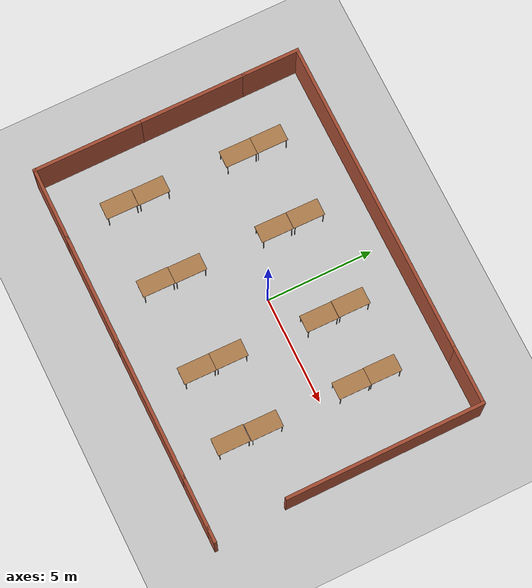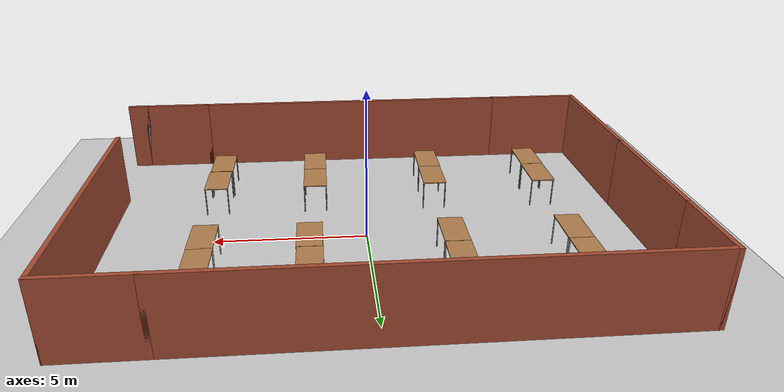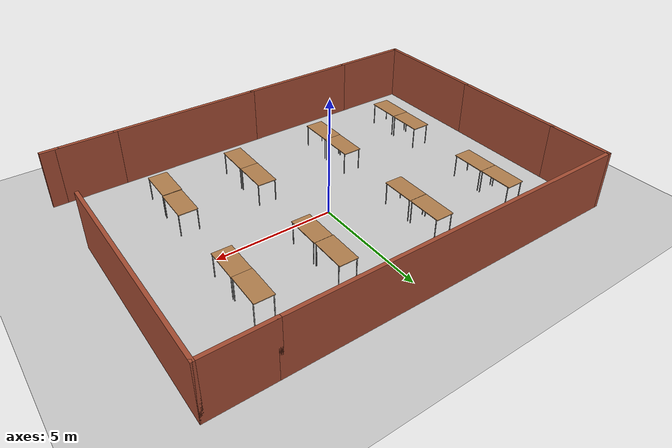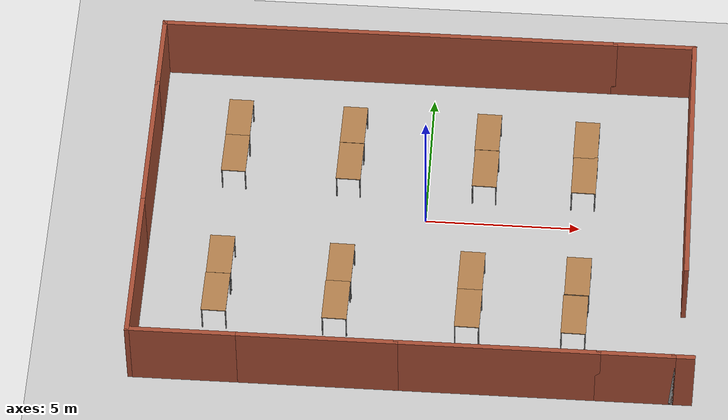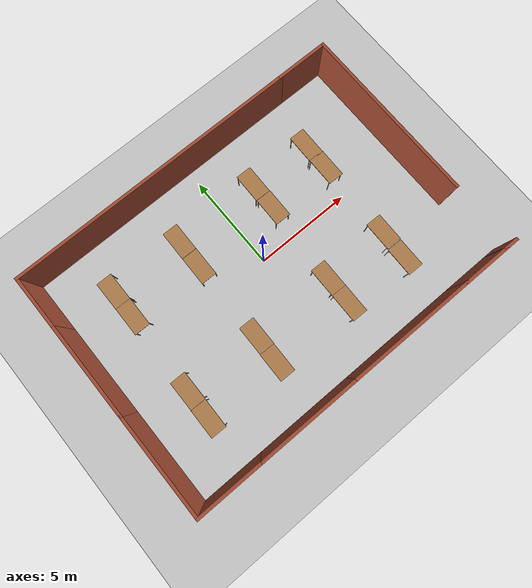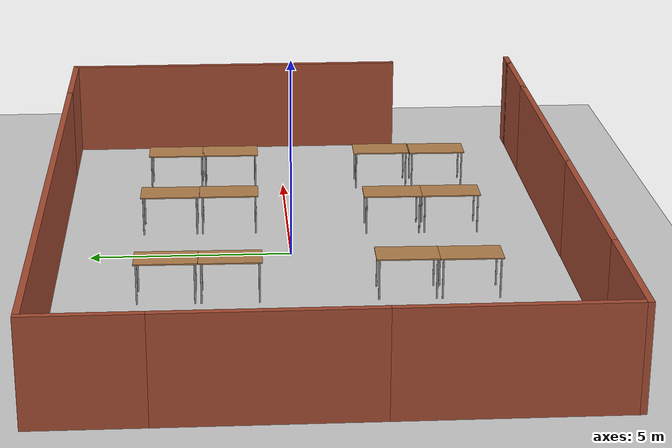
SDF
<sdf version="1.7">
 <world name="default">
  <light name="sun" type="directional">
   <pose>0 0 10 0 -0 0</pose>
   <diffuse>0.8 0.8 0.8 1</diffuse>
   <specular>0.2 0.2 0.2 1</specular>
   <attenuation>
    <range>1000</range>
    <constant>0.9</constant>
    <linear>0.01</linear>
    <quadratic>0.001</quadratic>
   </attenuation>
   <direction>-0.5 0.1 -0.9</direction>
   <spot><inner_angle>0</inner_angle><outer_angle>0</outer_angle><falloff>0</falloff></spot>
  </light>
  <model name="ground_plane">
   <static>1</static>
   <link name="link">
    <collision name="collision">
     <geometry><plane><normal>0 0 1</normal><size>100 100</size></plane></geometry>
     <surface>
      <contact><collide_bitmask>65535</collide_bitmask></contact>
      <friction><ode><mu>100</mu><mu2>50</mu2></ode></friction>
     </surface>
    </collision>
    <visual name="visual">
     <cast_shadows>0</cast_shadows>
     <geometry><plane><normal>0 0 1</normal><size>100 100</size></plane></geometry>
     <material>
      <script><uri>file://media/materials/scripts/gazebo.material</uri><name>Gazebo/Grey</name></script>
     </material>
    </visual>
   </link>
  </model>
  <gravity>0 0 -9.8</gravity>
  <magnetic_field>6e-06 2.3e-05 -4.2e-05</magnetic_field>
  <atmosphere type="adiabatic"/>
  <physics type="ode">
   <max_step_size>0.001</max_step_size>
   <real_time_factor>1</real_time_factor>
   <real_time_update_rate>1000</real_time_update_rate>
  </physics>
  <scene><ambient>0.4 0.4 0.4 1</ambient><background>0.7 0.7 0.7 1</background><shadows>1</shadows></scene>
  <audio><device>default</device></audio>
  <spherical_coordinates>
   <surface_model>EARTH_WGS84</surface_model>
   <latitude_deg>0</latitude_deg>
   <longitude_deg>0</longitude_deg>
   <elevation>0</elevation>
   <heading_deg>0</heading_deg>
  </spherical_coordinates>
  <model name="Restaurant_Layout_new">
   <pose>-0.10108 -0.466977 0 0 -0 0</pose>
   <link name="Wall_19">
    <collision name="Wall_19_Collision">
     <geometry><box><size>6.5 0.15 2.5</size></box></geometry>
     <pose>0 0 1.25 0 -0 0</pose>
    </collision>
    <visual name="Wall_19_Visual">
     <pose>0 0 1.25 0 -0 0</pose>
     <geometry><box><size>6.5 0.15 2.5</size></box></geometry>
     <material>
      <script><uri>file://media/materials/scripts/gazebo.material</uri><name>Gazebo/Bricks</name></script>
      <ambient>1 1 1 1</ambient>
     </material>
     <meta><layer>0</layer></meta>
    </visual>
    <pose>2.75 -6.275 0 0 -0 0</pose>
   </link>
   <link name="Wall_22">
    <collision name="Wall_22_Collision">
     <geometry><box><size>5.25 0.15 2.5</size></box></geometry>
     <pose>0 0 1.25 0 -0 0</pose>
    </collision>
    <visual name="Wall_22_Visual">
     <pose>0 0 1.25 0 -0 0</pose>
     <geometry><box><size>5.25 0.15 2.5</size></box></geometry>
     <material>
      <script><uri>file://media/materials/scripts/gazebo.material</uri><name>Gazebo/Bricks</name></script>
      <ambient>1 1 1 1</ambient>
     </material>
     <meta><layer>0</layer></meta>
    </visual>
    <pose>-2.975 -6.275 0 0 -0 3.14159</pose>
   </link>
   <link name="Wall_24">
    <collision name="Wall_24_Collision">
     <geometry><box><size>3.5 0.15 2.5</size></box></geometry>
     <pose>0 0 1.25 0 -0 0</pose>
    </collision>
    <visual name="Wall_24_Visual">
     <pose>0 0 1.25 0 -0 0</pose>
     <geometry><box><size>3.5 0.15 2.5</size></box></geometry>
     <material>
      <script><uri>file://media/materials/scripts/gazebo.material</uri><name>Gazebo/Bricks</name></script>
      <ambient>1 1 1 1</ambient>
     </material>
     <meta><layer>0</layer></meta>
    </visual>
    <pose>-7.2 -6.275 0 0 -0 3.14159</pose>
   </link>
   <link name="Wall_26">
    <collision name="Wall_26_Collision">
     <geometry><box><size>5.25 0.15 2.5</size></box></geometry>
     <pose>0 0 1.25 0 -0 0</pose>
    </collision>
    <visual name="Wall_26_Visual">
     <pose>0 0 1.25 0 -0 0</pose>
     <geometry><box><size>5.25 0.15 2.5</size></box></geometry>
     <material>
      <script><uri>file://media/materials/scripts/gazebo.material</uri><name>Gazebo/Bricks</name></script>
      <ambient>1 1 1 1</ambient>
     </material>
     <meta><layer>0</layer></meta>
    </visual>
    <pose>-8.875 -3.725 0 0 -0 1.5708</pose>
   </link>
   <link name="Wall_28">
    <collision name="Wall_28_Collision">
     <geometry><box><size>5 0.15 2.5</size></box></geometry>
     <pose>0 0 1.25 0 -0 0</pose>
    </collision>
    <visual name="Wall_28_Visual">
     <pose>0 0 1.25 0 -0 0</pose>
     <geometry><box><size>5 0.15 2.5</size></box></geometry>
     <material>
      <script><uri>file://media/materials/scripts/gazebo.material</uri><name>Gazebo/Bricks</name></script>
      <ambient>1 1 1 1</ambient>
     </material>
     <meta><layer>0</layer></meta>
    </visual>
    <pose>-8.875 1.25 0 0 -0 1.5708</pose>
   </link>
   <link name="Wall_29">
    <collision name="Wall_29_Collision">
     <geometry><box><size>2.75 0.15 2.5</size></box></geometry>
     <pose>0 0 1.25 0 -0 0</pose>
    </collision>
    <visual name="Wall_29_Visual">
     <pose>0 0 1.25 0 -0 0</pose>
     <geometry><box><size>2.75 0.15 2.5</size></box></geometry>
     <material>
      <script><uri>file://media/materials/scripts/gazebo.material</uri><name>Gazebo/Bricks</name></script>
      <ambient>1 1 1 1</ambient>
     </material>
     <meta><layer>0</layer></meta>
    </visual>
    <pose>-8.875 4.975 0 0 -0 1.5708</pose>
   </link>
   <link name="Wall_30">
    <collision name="Wall_30_Collision">
     <geometry><box><size>15 0.15 2.5</size></box></geometry>
     <pose>0 0 1.25 0 -0 0</pose>
    </collision>
    <visual name="Wall_30_Visual">
     <pose>0 0 1.25 0 -0 0</pose>
     <geometry><box><size>15 0.15 2.5</size></box></geometry>
     <material>
      <script><uri>file://media/materials/scripts/gazebo.material</uri><name>Gazebo/Bricks</name></script>
      <ambient>1 1 1 1</ambient>
     </material>
     <meta><layer>0</layer></meta>
    </visual>
    <pose>-1.45 6.275 0 0 -0 0</pose>
   </link>
   <link name="Wall_31">
    <collision name="Wall_31_Collision">
     <geometry><box><size>2.75 0.15 2.5</size></box></geometry>
     <pose>0 0 1.25 0 -0 0</pose>
    </collision>
    <visual name="Wall_31_Visual">
     <pose>0 0 1.25 0 -0 0</pose>
     <geometry><box><size>2.75 0.15 2.5</size></box></geometry>
     <material>
      <script><uri>file://media/materials/scripts/gazebo.material</uri><name>Gazebo/Bricks</name></script>
      <ambient>1 1 1 1</ambient>
     </material>
     <meta><layer>0</layer></meta>
    </visual>
    <pose>7.275 6.275 0 0 -0 0</pose>
   </link>
   <link name="Wall_32">
    <collision name="Wall_32_Collision">
     <geometry><box><size>9.25 0.15 2.5</size></box></geometry>
     <pose>0 0 1.25 0 -0 0</pose>
    </collision>
    <visual name="Wall_32_Visual">
     <pose>0 0 1.25 0 -0 0</pose>
     <geometry><box><size>9.25 0.15 2.5</size></box></geometry>
     <material>
      <script><uri>file://media/materials/scripts/gazebo.material</uri><name>Gazebo/Bricks</name></script>
      <ambient>1 1 1 1</ambient>
     </material>
     <meta><layer>0</layer></meta>
    </visual>
    <pose>8.575 1.725 0 0 -0 -1.5708</pose>
   </link>
   <link name="Wall_34">
    <collision name="Wall_34_Collision">
     <geometry><box><size>2.5 0.15 2.5</size></box></geometry>
     <pose>0 0 1.25 0 -0 0</pose>
    </collision>
    <visual name="Wall_34_Visual">
     <pose>0 0 1.25 0 -0 0</pose>
     <geometry><box><size>2.5 0.15 2.5</size></box></geometry>
     <material>
      <script><uri>file://media/materials/scripts/gazebo.material</uri><name>Gazebo/Bricks</name></script>
      <ambient>1 1 1 1</ambient>
     </material>
     <meta><layer>0</layer></meta>
    </visual>
    <pose>7.1 -6.275 0 0 -0 0</pose>
   </link>
   <link name="Wall_35">
    <collision name="Wall_35_Collision">
     <geometry><box><size>0.15 0.15 2.5</size></box></geometry>
     <pose>0 0 1.25 0 -0 0</pose>
    </collision>
    <visual name="Wall_35_Visual">
     <pose>0 0 1.25 0 -0 0</pose>
     <geometry><box><size>0.15 0.15 2.5</size></box></geometry>
     <material>
      <script><uri>file://media/materials/scripts/gazebo.material</uri><name>Gazebo/Grey</name></script>
      <ambient>1 1 1 1</ambient>
     </material>
     <meta><layer>0</layer></meta>
    </visual>
    <pose>8.275 -6.275 0 0 -0 0</pose>
   </link>
   <link name="Wall_36">
    <collision name="Wall_36_Collision">
     <geometry><box><size>0.75 0.15 2.5</size></box></geometry>
     <pose>0 0 1.25 0 -0 0</pose>
    </collision>
    <visual name="Wall_36_Visual">
     <pose>0 0 1.25 0 -0 0</pose>
     <geometry><box><size>0.75 0.15 2.5</size></box></geometry>
     <material>
      <script><uri>file://media/materials/scripts/gazebo.material</uri><name>Gazebo/Bricks</name></script>
      <ambient>1 1 1 1</ambient>
     </material>
     <meta><layer>0</layer></meta>
    </visual>
    <pose>8.575 -6.275 0 0 -0 0</pose>
   </link>
   <static>1</static>
  </model>
  <model name="table">
   <static>1</static>
   <link name="link">
    <collision name="surface">
     <pose>0 0 1 0 -0 0</pose>
     <geometry><box><size>1.5 0.8 0.03</size></box></geometry>
     <surface><friction><ode><mu>0.6</mu><mu2>0.6</mu2></ode></friction></surface>
    </collision>
    <visual name="visual1">
     <pose>0 0 1 0 -0 0</pose>
     <geometry><box><size>1.5 0.8 0.03</size></box></geometry>
     <material>
      <script><uri>file://media/materials/scripts/gazebo.material</uri><name>Gazebo/Wood</name></script>
     </material>
    </visual>
    <collision name="front_left_leg">
     <pose>0.68 0.38 0.5 0 -0 0</pose>
     <geometry><cylinder><radius>0.02</radius><length>1</length></cylinder></geometry>
    </collision>
    <visual name="front_left_leg">
     <pose>0.68 0.38 0.5 0 -0 0</pose>
     <geometry><cylinder><radius>0.02</radius><length>1</length></cylinder></geometry>
     <material>
      <script><uri>file://media/materials/scripts/gazebo.material</uri><name>Gazebo/Grey</name></script>
     </material>
    </visual>
    <collision name="front_right_leg">
     <pose>0.68 -0.38 0.5 0 -0 0</pose>
     <geometry><cylinder><radius>0.02</radius><length>1</length></cylinder></geometry>
    </collision>
    <visual name="front_right_leg">
     <pose>0.68 -0.38 0.5 0 -0 0</pose>
     <geometry><cylinder><radius>0.02</radius><length>1</length></cylinder></geometry>
     <material>
      <script><uri>file://media/materials/scripts/gazebo.material</uri><name>Gazebo/Grey</name></script>
     </material>
    </visual>
    <collision name="back_right_leg">
     <pose>-0.68 -0.38 0.5 0 -0 0</pose>
     <geometry><cylinder><radius>0.02</radius><length>1</length></cylinder></geometry>
    </collision>
    <visual name="back_right_leg">
     <pose>-0.68 -0.38 0.5 0 -0 0</pose>
     <geometry><cylinder><radius>0.02</radius><length>1</length></cylinder></geometry>
     <material>
      <script><uri>file://media/materials/scripts/gazebo.material</uri><name>Gazebo/Grey</name></script>
     </material>
    </visual>
    <collision name="back_left_leg">
     <pose>-0.68 0.38 0.5 0 -0 0</pose>
     <geometry><cylinder><radius>0.02</radius><length>1</length></cylinder></geometry>
    </collision>
    <visual name="back_left_leg">
     <pose>-0.68 0.38 0.5 0 -0 0</pose>
     <geometry><cylinder><radius>0.02</radius><length>1</length></cylinder></geometry>
     <material>
      <script><uri>file://media/materials/scripts/gazebo.material</uri><name>Gazebo/Grey</name></script>
     </material>
    </visual>
   </link>
   <pose>-6.31678 3.1302 0 0 -0 1.56426</pose>
  </model>
  <model name="table_0">
   <static>1</static>
   <link name="link">
    <collision name="surface">
     <pose>0 0 1 0 -0 0</pose>
     <geometry><box><size>1.5 0.8 0.03</size></box></geometry>
     <surface><friction><ode><mu>0.6</mu><mu2>0.6</mu2></ode></friction></surface>
    </collision>
    <visual name="visual1">
     <pose>0 0 1 0 -0 0</pose>
     <geometry><box><size>1.5 0.8 0.03</size></box></geometry>
     <material>
      <script><uri>file://media/materials/scripts/gazebo.material</uri><name>Gazebo/Wood</name></script>
     </material>
    </visual>
    <collision name="front_left_leg">
     <pose>0.68 0.38 0.5 0 -0 0</pose>
     <geometry><cylinder><radius>0.02</radius><length>1</length></cylinder></geometry>
    </collision>
    <visual name="front_left_leg">
     <pose>0.68 0.38 0.5 0 -0 0</pose>
     <geometry><cylinder><radius>0.02</radius><length>1</length></cylinder></geometry>
     <material>
      <script><uri>file://media/materials/scripts/gazebo.material</uri><name>Gazebo/Grey</name></script>
     </material>
    </visual>
    <collision name="front_right_leg">
     <pose>0.68 -0.38 0.5 0 -0 0</pose>
     <geometry><cylinder><radius>0.02</radius><length>1</length></cylinder></geometry>
    </collision>
    <visual name="front_right_leg">
     <pose>0.68 -0.38 0.5 0 -0 0</pose>
     <geometry><cylinder><radius>0.02</radius><length>1</length></cylinder></geometry>
     <material>
      <script><uri>file://media/materials/scripts/gazebo.material</uri><name>Gazebo/Grey</name></script>
     </material>
    </visual>
    <collision name="back_right_leg">
     <pose>-0.68 -0.38 0.5 0 -0 0</pose>
     <geometry><cylinder><radius>0.02</radius><length>1</length></cylinder></geometry>
    </collision>
    <visual name="back_right_leg">
     <pose>-0.68 -0.38 0.5 0 -0 0</pose>
     <geometry><cylinder><radius>0.02</radius><length>1</length></cylinder></geometry>
     <material>
      <script><uri>file://media/materials/scripts/gazebo.material</uri><name>Gazebo/Grey</name></script>
     </material>
    </visual>
    <collision name="back_left_leg">
     <pose>-0.68 0.38 0.5 0 -0 0</pose>
     <geometry><cylinder><radius>0.02</radius><length>1</length></cylinder></geometry>
    </collision>
    <visual name="back_left_leg">
     <pose>-0.68 0.38 0.5 0 -0 0</pose>
     <geometry><cylinder><radius>0.02</radius><length>1</length></cylinder></geometry>
     <material>
      <script><uri>file://media/materials/scripts/gazebo.material</uri><name>Gazebo/Grey</name></script>
     </material>
    </visual>
   </link>
   <pose>-6.32608 1.65368 0.001915 0 -0 1.55599</pose>
  </model>
  <model name="table_clone">
   <static>1</static>
   <link name="link">
    <collision name="surface">
     <pose>0 0 1 0 -0 0</pose>
     <geometry><box><size>1.5 0.8 0.03</size></box></geometry>
     <surface><friction><ode><mu>0.6</mu><mu2>0.6</mu2></ode></friction></surface>
    </collision>
    <visual name="visual1">
     <pose>0 0 1 0 -0 0</pose>
     <geometry><box><size>1.5 0.8 0.03</size></box></geometry>
     <material>
      <script><uri>file://media/materials/scripts/gazebo.material</uri><name>Gazebo/Wood</name></script>
     </material>
    </visual>
    <collision name="front_left_leg">
     <pose>0.68 0.38 0.5 0 -0 0</pose>
     <geometry><cylinder><radius>0.02</radius><length>1</length></cylinder></geometry>
    </collision>
    <visual name="front_left_leg">
     <pose>0.68 0.38 0.5 0 -0 0</pose>
     <geometry><cylinder><radius>0.02</radius><length>1</length></cylinder></geometry>
     <material>
      <script><uri>file://media/materials/scripts/gazebo.material</uri><name>Gazebo/Grey</name></script>
     </material>
    </visual>
    <collision name="front_right_leg">
     <pose>0.68 -0.38 0.5 0 -0 0</pose>
     <geometry><cylinder><radius>0.02</radius><length>1</length></cylinder></geometry>
    </collision>
    <visual name="front_right_leg">
     <pose>0.68 -0.38 0.5 0 -0 0</pose>
     <geometry><cylinder><radius>0.02</radius><length>1</length></cylinder></geometry>
     <material>
      <script><uri>file://media/materials/scripts/gazebo.material</uri><name>Gazebo/Grey</name></script>
     </material>
    </visual>
    <collision name="back_right_leg">
     <pose>-0.68 -0.38 0.5 0 -0 0</pose>
     <geometry><cylinder><radius>0.02</radius><length>1</length></cylinder></geometry>
    </collision>
    <visual name="back_right_leg">
     <pose>-0.68 -0.38 0.5 0 -0 0</pose>
     <geometry><cylinder><radius>0.02</radius><length>1</length></cylinder></geometry>
     <material>
      <script><uri>file://media/materials/scripts/gazebo.material</uri><name>Gazebo/Grey</name></script>
     </material>
    </visual>
    <collision name="back_left_leg">
     <pose>-0.68 0.38 0.5 0 -0 0</pose>
     <geometry><cylinder><radius>0.02</radius><length>1</length></cylinder></geometry>
    </collision>
    <visual name="back_left_leg">
     <pose>-0.68 0.38 0.5 0 -0 0</pose>
     <geometry><cylinder><radius>0.02</radius><length>1</length></cylinder></geometry>
     <material>
      <script><uri>file://media/materials/scripts/gazebo.material</uri><name>Gazebo/Grey</name></script>
     </material>
    </visual>
   </link>
   <pose>-6.44202 -2.52049 0 0 -0 1.56426</pose>
  </model>
  <model name="table_0_clone">
   <static>1</static>
   <link name="link">
    <collision name="surface">
     <pose>0 0 1 0 -0 0</pose>
     <geometry><box><size>1.5 0.8 0.03</size></box></geometry>
     <surface><friction><ode><mu>0.6</mu><mu2>0.6</mu2></ode></friction></surface>
    </collision>
    <visual name="visual1">
     <pose>0 0 1 0 -0 0</pose>
     <geometry><box><size>1.5 0.8 0.03</size></box></geometry>
     <material>
      <script><uri>file://media/materials/scripts/gazebo.material</uri><name>Gazebo/Wood</name></script>
     </material>
    </visual>
    <collision name="front_left_leg">
     <pose>0.68 0.38 0.5 0 -0 0</pose>
     <geometry><cylinder><radius>0.02</radius><length>1</length></cylinder></geometry>
    </collision>
    <visual name="front_left_leg">
     <pose>0.68 0.38 0.5 0 -0 0</pose>
     <geometry><cylinder><radius>0.02</radius><length>1</length></cylinder></geometry>
     <material>
      <script><uri>file://media/materials/scripts/gazebo.material</uri><name>Gazebo/Grey</name></script>
     </material>
    </visual>
    <collision name="front_right_leg">
     <pose>0.68 -0.38 0.5 0 -0 0</pose>
     <geometry><cylinder><radius>0.02</radius><length>1</length></cylinder></geometry>
    </collision>
    <visual name="front_right_leg">
     <pose>0.68 -0.38 0.5 0 -0 0</pose>
     <geometry><cylinder><radius>0.02</radius><length>1</length></cylinder></geometry>
     <material>
      <script><uri>file://media/materials/scripts/gazebo.material</uri><name>Gazebo/Grey</name></script>
     </material>
    </visual>
    <collision name="back_right_leg">
     <pose>-0.68 -0.38 0.5 0 -0 0</pose>
     <geometry><cylinder><radius>0.02</radius><length>1</length></cylinder></geometry>
    </collision>
    <visual name="back_right_leg">
     <pose>-0.68 -0.38 0.5 0 -0 0</pose>
     <geometry><cylinder><radius>0.02</radius><length>1</length></cylinder></geometry>
     <material>
      <script><uri>file://media/materials/scripts/gazebo.material</uri><name>Gazebo/Grey</name></script>
     </material>
    </visual>
    <collision name="back_left_leg">
     <pose>-0.68 0.38 0.5 0 -0 0</pose>
     <geometry><cylinder><radius>0.02</radius><length>1</length></cylinder></geometry>
    </collision>
    <visual name="back_left_leg">
     <pose>-0.68 0.38 0.5 0 -0 0</pose>
     <geometry><cylinder><radius>0.02</radius><length>1</length></cylinder></geometry>
     <material>
      <script><uri>file://media/materials/scripts/gazebo.material</uri><name>Gazebo/Grey</name></script>
     </material>
    </visual>
   </link>
   <pose>-6.46987 -4.02453 0.001915 0 -0 1.55599</pose>
  </model>
  <model name="table_0_clone_0">
   <static>1</static>
   <link name="link">
    <collision name="surface">
     <pose>0 0 1 0 -0 0</pose>
     <geometry><box><size>1.5 0.8 0.03</size></box></geometry>
     <surface><friction><ode><mu>0.6</mu><mu2>0.6</mu2></ode></friction></surface>
    </collision>
    <visual name="visual1">
     <pose>0 0 1 0 -0 0</pose>
     <geometry><box><size>1.5 0.8 0.03</size></box></geometry>
     <material>
      <script><uri>file://media/materials/scripts/gazebo.material</uri><name>Gazebo/Wood</name></script>
     </material>
    </visual>
    <collision name="front_left_leg">
     <pose>0.68 0.38 0.5 0 -0 0</pose>
     <geometry><cylinder><radius>0.02</radius><length>1</length></cylinder></geometry>
    </collision>
    <visual name="front_left_leg">
     <pose>0.68 0.38 0.5 0 -0 0</pose>
     <geometry><cylinder><radius>0.02</radius><length>1</length></cylinder></geometry>
     <material>
      <script><uri>file://media/materials/scripts/gazebo.material</uri><name>Gazebo/Grey</name></script>
     </material>
    </visual>
    <collision name="front_right_leg">
     <pose>0.68 -0.38 0.5 0 -0 0</pose>
     <geometry><cylinder><radius>0.02</radius><length>1</length></cylinder></geometry>
    </collision>
    <visual name="front_right_leg">
     <pose>0.68 -0.38 0.5 0 -0 0</pose>
     <geometry><cylinder><radius>0.02</radius><length>1</length></cylinder></geometry>
     <material>
      <script><uri>file://media/materials/scripts/gazebo.material</uri><name>Gazebo/Grey</name></script>
     </material>
    </visual>
    <collision name="back_right_leg">
     <pose>-0.68 -0.38 0.5 0 -0 0</pose>
     <geometry><cylinder><radius>0.02</radius><length>1</length></cylinder></geometry>
    </collision>
    <visual name="back_right_leg">
     <pose>-0.68 -0.38 0.5 0 -0 0</pose>
     <geometry><cylinder><radius>0.02</radius><length>1</length></cylinder></geometry>
     <material>
      <script><uri>file://media/materials/scripts/gazebo.material</uri><name>Gazebo/Grey</name></script>
     </material>
    </visual>
    <collision name="back_left_leg">
     <pose>-0.68 0.38 0.5 0 -0 0</pose>
     <geometry><cylinder><radius>0.02</radius><length>1</length></cylinder></geometry>
    </collision>
    <visual name="back_left_leg">
     <pose>-0.68 0.38 0.5 0 -0 0</pose>
     <geometry><cylinder><radius>0.02</radius><length>1</length></cylinder></geometry>
     <material>
      <script><uri>file://media/materials/scripts/gazebo.material</uri><name>Gazebo/Grey</name></script>
     </material>
    </visual>
   </link>
   <pose>-2.54964 3.05893 0.001915 0 -0 1.55599</pose>
  </model>
  <model name="table_0_clone_1">
   <static>1</static>
   <link name="link">
    <collision name="surface">
     <pose>0 0 1 0 -0 0</pose>
     <geometry><box><size>1.5 0.8 0.03</size></box></geometry>
     <surface><friction><ode><mu>0.6</mu><mu2>0.6</mu2></ode></friction></surface>
    </collision>
    <visual name="visual1">
     <pose>0 0 1 0 -0 0</pose>
     <geometry><box><size>1.5 0.8 0.03</size></box></geometry>
     <material>
      <script><uri>file://media/materials/scripts/gazebo.material</uri><name>Gazebo/Wood</name></script>
     </material>
    </visual>
    <collision name="front_left_leg">
     <pose>0.68 0.38 0.5 0 -0 0</pose>
     <geometry><cylinder><radius>0.02</radius><length>1</length></cylinder></geometry>
    </collision>
    <visual name="front_left_leg">
     <pose>0.68 0.38 0.5 0 -0 0</pose>
     <geometry><cylinder><radius>0.02</radius><length>1</length></cylinder></geometry>
     <material>
      <script><uri>file://media/materials/scripts/gazebo.material</uri><name>Gazebo/Grey</name></script>
     </material>
    </visual>
    <collision name="front_right_leg">
     <pose>0.68 -0.38 0.5 0 -0 0</pose>
     <geometry><cylinder><radius>0.02</radius><length>1</length></cylinder></geometry>
    </collision>
    <visual name="front_right_leg">
     <pose>0.68 -0.38 0.5 0 -0 0</pose>
     <geometry><cylinder><radius>0.02</radius><length>1</length></cylinder></geometry>
     <material>
      <script><uri>file://media/materials/scripts/gazebo.material</uri><name>Gazebo/Grey</name></script>
     </material>
    </visual>
    <collision name="back_right_leg">
     <pose>-0.68 -0.38 0.5 0 -0 0</pose>
     <geometry><cylinder><radius>0.02</radius><length>1</length></cylinder></geometry>
    </collision>
    <visual name="back_right_leg">
     <pose>-0.68 -0.38 0.5 0 -0 0</pose>
     <geometry><cylinder><radius>0.02</radius><length>1</length></cylinder></geometry>
     <material>
      <script><uri>file://media/materials/scripts/gazebo.material</uri><name>Gazebo/Grey</name></script>
     </material>
    </visual>
    <collision name="back_left_leg">
     <pose>-0.68 0.38 0.5 0 -0 0</pose>
     <geometry><cylinder><radius>0.02</radius><length>1</length></cylinder></geometry>
    </collision>
    <visual name="back_left_leg">
     <pose>-0.68 0.38 0.5 0 -0 0</pose>
     <geometry><cylinder><radius>0.02</radius><length>1</length></cylinder></geometry>
     <material>
      <script><uri>file://media/materials/scripts/gazebo.material</uri><name>Gazebo/Grey</name></script>
     </material>
    </visual>
   </link>
   <pose>-2.57057 1.55008 0.001915 0 -0 1.55599</pose>
  </model>
  <model name="table_0_clone_2">
   <static>1</static>
   <link name="link">
    <collision name="surface">
     <pose>0 0 1 0 -0 0</pose>
     <geometry><box><size>1.5 0.8 0.03</size></box></geometry>
     <surface><friction><ode><mu>0.6</mu><mu2>0.6</mu2></ode></friction></surface>
    </collision>
    <visual name="visual1">
     <pose>0 0 1 0 -0 0</pose>
     <geometry><box><size>1.5 0.8 0.03</size></box></geometry>
     <material>
      <script><uri>file://media/materials/scripts/gazebo.material</uri><name>Gazebo/Wood</name></script>
     </material>
    </visual>
    <collision name="front_left_leg">
     <pose>0.68 0.38 0.5 0 -0 0</pose>
     <geometry><cylinder><radius>0.02</radius><length>1</length></cylinder></geometry>
    </collision>
    <visual name="front_left_leg">
     <pose>0.68 0.38 0.5 0 -0 0</pose>
     <geometry><cylinder><radius>0.02</radius><length>1</length></cylinder></geometry>
     <material>
      <script><uri>file://media/materials/scripts/gazebo.material</uri><name>Gazebo/Grey</name></script>
     </material>
    </visual>
    <collision name="front_right_leg">
     <pose>0.68 -0.38 0.5 0 -0 0</pose>
     <geometry><cylinder><radius>0.02</radius><length>1</length></cylinder></geometry>
    </collision>
    <visual name="front_right_leg">
     <pose>0.68 -0.38 0.5 0 -0 0</pose>
     <geometry><cylinder><radius>0.02</radius><length>1</length></cylinder></geometry>
     <material>
      <script><uri>file://media/materials/scripts/gazebo.material</uri><name>Gazebo/Grey</name></script>
     </material>
    </visual>
    <collision name="back_right_leg">
     <pose>-0.68 -0.38 0.5 0 -0 0</pose>
     <geometry><cylinder><radius>0.02</radius><length>1</length></cylinder></geometry>
    </collision>
    <visual name="back_right_leg">
     <pose>-0.68 -0.38 0.5 0 -0 0</pose>
     <geometry><cylinder><radius>0.02</radius><length>1</length></cylinder></geometry>
     <material>
      <script><uri>file://media/materials/scripts/gazebo.material</uri><name>Gazebo/Grey</name></script>
     </material>
    </visual>
    <collision name="back_left_leg">
     <pose>-0.68 0.38 0.5 0 -0 0</pose>
     <geometry><cylinder><radius>0.02</radius><length>1</length></cylinder></geometry>
    </collision>
    <visual name="back_left_leg">
     <pose>-0.68 0.38 0.5 0 -0 0</pose>
     <geometry><cylinder><radius>0.02</radius><length>1</length></cylinder></geometry>
     <material>
      <script><uri>file://media/materials/scripts/gazebo.material</uri><name>Gazebo/Grey</name></script>
     </material>
    </visual>
   </link>
   <pose>-2.57349 -2.60562 0.001915 0 -0 1.55599</pose>
  </model>
  <model name="table_0_clone_3">
   <static>1</static>
   <link name="link">
    <collision name="surface">
     <pose>0 0 1 0 -0 0</pose>
     <geometry><box><size>1.5 0.8 0.03</size></box></geometry>
     <surface><friction><ode><mu>0.6</mu><mu2>0.6</mu2></ode></friction></surface>
    </collision>
    <visual name="visual1">
     <pose>0 0 1 0 -0 0</pose>
     <geometry><box><size>1.5 0.8 0.03</size></box></geometry>
     <material>
      <script><uri>file://media/materials/scripts/gazebo.material</uri><name>Gazebo/Wood</name></script>
     </material>
    </visual>
    <collision name="front_left_leg">
     <pose>0.68 0.38 0.5 0 -0 0</pose>
     <geometry><cylinder><radius>0.02</radius><length>1</length></cylinder></geometry>
    </collision>
    <visual name="front_left_leg">
     <pose>0.68 0.38 0.5 0 -0 0</pose>
     <geometry><cylinder><radius>0.02</radius><length>1</length></cylinder></geometry>
     <material>
      <script><uri>file://media/materials/scripts/gazebo.material</uri><name>Gazebo/Grey</name></script>
     </material>
    </visual>
    <collision name="front_right_leg">
     <pose>0.68 -0.38 0.5 0 -0 0</pose>
     <geometry><cylinder><radius>0.02</radius><length>1</length></cylinder></geometry>
    </collision>
    <visual name="front_right_leg">
     <pose>0.68 -0.38 0.5 0 -0 0</pose>
     <geometry><cylinder><radius>0.02</radius><length>1</length></cylinder></geometry>
     <material>
      <script><uri>file://media/materials/scripts/gazebo.material</uri><name>Gazebo/Grey</name></script>
     </material>
    </visual>
    <collision name="back_right_leg">
     <pose>-0.68 -0.38 0.5 0 -0 0</pose>
     <geometry><cylinder><radius>0.02</radius><length>1</length></cylinder></geometry>
    </collision>
    <visual name="back_right_leg">
     <pose>-0.68 -0.38 0.5 0 -0 0</pose>
     <geometry><cylinder><radius>0.02</radius><length>1</length></cylinder></geometry>
     <material>
      <script><uri>file://media/materials/scripts/gazebo.material</uri><name>Gazebo/Grey</name></script>
     </material>
    </visual>
    <collision name="back_left_leg">
     <pose>-0.68 0.38 0.5 0 -0 0</pose>
     <geometry><cylinder><radius>0.02</radius><length>1</length></cylinder></geometry>
    </collision>
    <visual name="back_left_leg">
     <pose>-0.68 0.38 0.5 0 -0 0</pose>
     <geometry><cylinder><radius>0.02</radius><length>1</length></cylinder></geometry>
     <material>
      <script><uri>file://media/materials/scripts/gazebo.material</uri><name>Gazebo/Grey</name></script>
     </material>
    </visual>
   </link>
   <pose>-2.61038 -4.10219 0.001915 0 -0 1.55599</pose>
  </model>
  <model name="table_0_clone_4">
   <static>1</static>
   <link name="link">
    <collision name="surface">
     <pose>0 0 1 0 -0 0</pose>
     <geometry><box><size>1.5 0.8 0.03</size></box></geometry>
     <surface><friction><ode><mu>0.6</mu><mu2>0.6</mu2></ode></friction></surface>
    </collision>
    <visual name="visual1">
     <pose>0 0 1 0 -0 0</pose>
     <geometry><box><size>1.5 0.8 0.03</size></box></geometry>
     <material>
      <script><uri>file://media/materials/scripts/gazebo.material</uri><name>Gazebo/Wood</name></script>
     </material>
    </visual>
    <collision name="front_left_leg">
     <pose>0.68 0.38 0.5 0 -0 0</pose>
     <geometry><cylinder><radius>0.02</radius><length>1</length></cylinder></geometry>
    </collision>
    <visual name="front_left_leg">
     <pose>0.68 0.38 0.5 0 -0 0</pose>
     <geometry><cylinder><radius>0.02</radius><length>1</length></cylinder></geometry>
     <material>
      <script><uri>file://media/materials/scripts/gazebo.material</uri><name>Gazebo/Grey</name></script>
     </material>
    </visual>
    <collision name="front_right_leg">
     <pose>0.68 -0.38 0.5 0 -0 0</pose>
     <geometry><cylinder><radius>0.02</radius><length>1</length></cylinder></geometry>
    </collision>
    <visual name="front_right_leg">
     <pose>0.68 -0.38 0.5 0 -0 0</pose>
     <geometry><cylinder><radius>0.02</radius><length>1</length></cylinder></geometry>
     <material>
      <script><uri>file://media/materials/scripts/gazebo.material</uri><name>Gazebo/Grey</name></script>
     </material>
    </visual>
    <collision name="back_right_leg">
     <pose>-0.68 -0.38 0.5 0 -0 0</pose>
     <geometry><cylinder><radius>0.02</radius><length>1</length></cylinder></geometry>
    </collision>
    <visual name="back_right_leg">
     <pose>-0.68 -0.38 0.5 0 -0 0</pose>
     <geometry><cylinder><radius>0.02</radius><length>1</length></cylinder></geometry>
     <material>
      <script><uri>file://media/materials/scripts/gazebo.material</uri><name>Gazebo/Grey</name></script>
     </material>
    </visual>
    <collision name="back_left_leg">
     <pose>-0.68 0.38 0.5 0 -0 0</pose>
     <geometry><cylinder><radius>0.02</radius><length>1</length></cylinder></geometry>
    </collision>
    <visual name="back_left_leg">
     <pose>-0.68 0.38 0.5 0 -0 0</pose>
     <geometry><cylinder><radius>0.02</radius><length>1</length></cylinder></geometry>
     <material>
      <script><uri>file://media/materials/scripts/gazebo.material</uri><name>Gazebo/Grey</name></script>
     </material>
    </visual>
   </link>
   <pose>1.86132 1.52194 0.001915 0 -0 1.55599</pose>
  </model>
  <model name="table_0_clone_5">
   <static>1</static>
   <link name="link">
    <collision name="surface">
     <pose>0 0 1 0 -0 0</pose>
     <geometry><box><size>1.5 0.8 0.03</size></box></geometry>
     <surface><friction><ode><mu>0.6</mu><mu2>0.6</mu2></ode></friction></surface>
    </collision>
    <visual name="visual1">
     <pose>0 0 1 0 -0 0</pose>
     <geometry><box><size>1.5 0.8 0.03</size></box></geometry>
     <material>
      <script><uri>file://media/materials/scripts/gazebo.material</uri><name>Gazebo/Wood</name></script>
     </material>
    </visual>
    <collision name="front_left_leg">
     <pose>0.68 0.38 0.5 0 -0 0</pose>
     <geometry><cylinder><radius>0.02</radius><length>1</length></cylinder></geometry>
    </collision>
    <visual name="front_left_leg">
     <pose>0.68 0.38 0.5 0 -0 0</pose>
     <geometry><cylinder><radius>0.02</radius><length>1</length></cylinder></geometry>
     <material>
      <script><uri>file://media/materials/scripts/gazebo.material</uri><name>Gazebo/Grey</name></script>
     </material>
    </visual>
    <collision name="front_right_leg">
     <pose>0.68 -0.38 0.5 0 -0 0</pose>
     <geometry><cylinder><radius>0.02</radius><length>1</length></cylinder></geometry>
    </collision>
    <visual name="front_right_leg">
     <pose>0.68 -0.38 0.5 0 -0 0</pose>
     <geometry><cylinder><radius>0.02</radius><length>1</length></cylinder></geometry>
     <material>
      <script><uri>file://media/materials/scripts/gazebo.material</uri><name>Gazebo/Grey</name></script>
     </material>
    </visual>
    <collision name="back_right_leg">
     <pose>-0.68 -0.38 0.5 0 -0 0</pose>
     <geometry><cylinder><radius>0.02</radius><length>1</length></cylinder></geometry>
    </collision>
    <visual name="back_right_leg">
     <pose>-0.68 -0.38 0.5 0 -0 0</pose>
     <geometry><cylinder><radius>0.02</radius><length>1</length></cylinder></geometry>
     <material>
      <script><uri>file://media/materials/scripts/gazebo.material</uri><name>Gazebo/Grey</name></script>
     </material>
    </visual>
    <collision name="back_left_leg">
     <pose>-0.68 0.38 0.5 0 -0 0</pose>
     <geometry><cylinder><radius>0.02</radius><length>1</length></cylinder></geometry>
    </collision>
    <visual name="back_left_leg">
     <pose>-0.68 0.38 0.5 0 -0 0</pose>
     <geometry><cylinder><radius>0.02</radius><length>1</length></cylinder></geometry>
     <material>
      <script><uri>file://media/materials/scripts/gazebo.material</uri><name>Gazebo/Grey</name></script>
     </material>
    </visual>
   </link>
   <pose>1.86623 3.02873 0.001915 0 -0 1.55599</pose>
  </model>
  <model name="table_0_clone_6">
   <static>1</static>
   <link name="link">
    <collision name="surface">
     <pose>0 0 1 0 -0 0</pose>
     <geometry><box><size>1.5 0.8 0.03</size></box></geometry>
     <surface><friction><ode><mu>0.6</mu><mu2>0.6</mu2></ode></friction></surface>
    </collision>
    <visual name="visual1">
     <pose>0 0 1 0 -0 0</pose>
     <geometry><box><size>1.5 0.8 0.03</size></box></geometry>
     <material>
      <script><uri>file://media/materials/scripts/gazebo.material</uri><name>Gazebo/Wood</name></script>
     </material>
    </visual>
    <collision name="front_left_leg">
     <pose>0.68 0.38 0.5 0 -0 0</pose>
     <geometry><cylinder><radius>0.02</radius><length>1</length></cylinder></geometry>
    </collision>
    <visual name="front_left_leg">
     <pose>0.68 0.38 0.5 0 -0 0</pose>
     <geometry><cylinder><radius>0.02</radius><length>1</length></cylinder></geometry>
     <material>
      <script><uri>file://media/materials/scripts/gazebo.material</uri><name>Gazebo/Grey</name></script>
     </material>
    </visual>
    <collision name="front_right_leg">
     <pose>0.68 -0.38 0.5 0 -0 0</pose>
     <geometry><cylinder><radius>0.02</radius><length>1</length></cylinder></geometry>
    </collision>
    <visual name="front_right_leg">
     <pose>0.68 -0.38 0.5 0 -0 0</pose>
     <geometry><cylinder><radius>0.02</radius><length>1</length></cylinder></geometry>
     <material>
      <script><uri>file://media/materials/scripts/gazebo.material</uri><name>Gazebo/Grey</name></script>
     </material>
    </visual>
    <collision name="back_right_leg">
     <pose>-0.68 -0.38 0.5 0 -0 0</pose>
     <geometry><cylinder><radius>0.02</radius><length>1</length></cylinder></geometry>
    </collision>
    <visual name="back_right_leg">
     <pose>-0.68 -0.38 0.5 0 -0 0</pose>
     <geometry><cylinder><radius>0.02</radius><length>1</length></cylinder></geometry>
     <material>
      <script><uri>file://media/materials/scripts/gazebo.material</uri><name>Gazebo/Grey</name></script>
     </material>
    </visual>
    <collision name="back_left_leg">
     <pose>-0.68 0.38 0.5 0 -0 0</pose>
     <geometry><cylinder><radius>0.02</radius><length>1</length></cylinder></geometry>
    </collision>
    <visual name="back_left_leg">
     <pose>-0.68 0.38 0.5 0 -0 0</pose>
     <geometry><cylinder><radius>0.02</radius><length>1</length></cylinder></geometry>
     <material>
      <script><uri>file://media/materials/scripts/gazebo.material</uri><name>Gazebo/Grey</name></script>
     </material>
    </visual>
   </link>
   <pose>1.6348 -2.67433 0.001915 0 -0 1.55599</pose>
  </model>
  <model name="table_0_clone_7">
   <static>1</static>
   <link name="link">
    <collision name="surface">
     <pose>0 0 1 0 -0 0</pose>
     <geometry><box><size>1.5 0.8 0.03</size></box></geometry>
     <surface><friction><ode><mu>0.6</mu><mu2>0.6</mu2></ode></friction></surface>
    </collision>
    <visual name="visual1">
     <pose>0 0 1 0 -0 0</pose>
     <geometry><box><size>1.5 0.8 0.03</size></box></geometry>
     <material>
      <script><uri>file://media/materials/scripts/gazebo.material</uri><name>Gazebo/Wood</name></script>
     </material>
    </visual>
    <collision name="front_left_leg">
     <pose>0.68 0.38 0.5 0 -0 0</pose>
     <geometry><cylinder><radius>0.02</radius><length>1</length></cylinder></geometry>
    </collision>
    <visual name="front_left_leg">
     <pose>0.68 0.38 0.5 0 -0 0</pose>
     <geometry><cylinder><radius>0.02</radius><length>1</length></cylinder></geometry>
     <material>
      <script><uri>file://media/materials/scripts/gazebo.material</uri><name>Gazebo/Grey</name></script>
     </material>
    </visual>
    <collision name="front_right_leg">
     <pose>0.68 -0.38 0.5 0 -0 0</pose>
     <geometry><cylinder><radius>0.02</radius><length>1</length></cylinder></geometry>
    </collision>
    <visual name="front_right_leg">
     <pose>0.68 -0.38 0.5 0 -0 0</pose>
     <geometry><cylinder><radius>0.02</radius><length>1</length></cylinder></geometry>
     <material>
      <script><uri>file://media/materials/scripts/gazebo.material</uri><name>Gazebo/Grey</name></script>
     </material>
    </visual>
    <collision name="back_right_leg">
     <pose>-0.68 -0.38 0.5 0 -0 0</pose>
     <geometry><cylinder><radius>0.02</radius><length>1</length></cylinder></geometry>
    </collision>
    <visual name="back_right_leg">
     <pose>-0.68 -0.38 0.5 0 -0 0</pose>
     <geometry><cylinder><radius>0.02</radius><length>1</length></cylinder></geometry>
     <material>
      <script><uri>file://media/materials/scripts/gazebo.material</uri><name>Gazebo/Grey</name></script>
     </material>
    </visual>
    <collision name="back_left_leg">
     <pose>-0.68 0.38 0.5 0 -0 0</pose>
     <geometry><cylinder><radius>0.02</radius><length>1</length></cylinder></geometry>
    </collision>
    <visual name="back_left_leg">
     <pose>-0.68 0.38 0.5 0 -0 0</pose>
     <geometry><cylinder><radius>0.02</radius><length>1</length></cylinder></geometry>
     <material>
      <script><uri>file://media/materials/scripts/gazebo.material</uri><name>Gazebo/Grey</name></script>
     </material>
    </visual>
   </link>
   <pose>1.6167 -4.1701 0.001915 0 -0 1.55599</pose>
  </model>
  <model name="table_0_clone_8">
   <static>1</static>
   <link name="link">
    <collision name="surface">
     <pose>0 0 1 0 -0 0</pose>
     <geometry><box><size>1.5 0.8 0.03</size></box></geometry>
     <surface><friction><ode><mu>0.6</mu><mu2>0.6</mu2></ode></friction></surface>
    </collision>
    <visual name="visual1">
     <pose>0 0 1 0 -0 0</pose>
     <geometry><box><size>1.5 0.8 0.03</size></box></geometry>
     <material>
      <script><uri>file://media/materials/scripts/gazebo.material</uri><name>Gazebo/Wood</name></script>
     </material>
    </visual>
    <collision name="front_left_leg">
     <pose>0.68 0.38 0.5 0 -0 0</pose>
     <geometry><cylinder><radius>0.02</radius><length>1</length></cylinder></geometry>
    </collision>
    <visual name="front_left_leg">
     <pose>0.68 0.38 0.5 0 -0 0</pose>
     <geometry><cylinder><radius>0.02</radius><length>1</length></cylinder></geometry>
     <material>
      <script><uri>file://media/materials/scripts/gazebo.material</uri><name>Gazebo/Grey</name></script>
     </material>
    </visual>
    <collision name="front_right_leg">
     <pose>0.68 -0.38 0.5 0 -0 0</pose>
     <geometry><cylinder><radius>0.02</radius><length>1</length></cylinder></geometry>
    </collision>
    <visual name="front_right_leg">
     <pose>0.68 -0.38 0.5 0 -0 0</pose>
     <geometry><cylinder><radius>0.02</radius><length>1</length></cylinder></geometry>
     <material>
      <script><uri>file://media/materials/scripts/gazebo.material</uri><name>Gazebo/Grey</name></script>
     </material>
    </visual>
    <collision name="back_right_leg">
     <pose>-0.68 -0.38 0.5 0 -0 0</pose>
     <geometry><cylinder><radius>0.02</radius><length>1</length></cylinder></geometry>
    </collision>
    <visual name="back_right_leg">
     <pose>-0.68 -0.38 0.5 0 -0 0</pose>
     <geometry><cylinder><radius>0.02</radius><length>1</length></cylinder></geometry>
     <material>
      <script><uri>file://media/materials/scripts/gazebo.material</uri><name>Gazebo/Grey</name></script>
     </material>
    </visual>
    <collision name="back_left_leg">
     <pose>-0.68 0.38 0.5 0 -0 0</pose>
     <geometry><cylinder><radius>0.02</radius><length>1</length></cylinder></geometry>
    </collision>
    <visual name="back_left_leg">
     <pose>-0.68 0.38 0.5 0 -0 0</pose>
     <geometry><cylinder><radius>0.02</radius><length>1</length></cylinder></geometry>
     <material>
      <script><uri>file://media/materials/scripts/gazebo.material</uri><name>Gazebo/Grey</name></script>
     </material>
    </visual>
   </link>
   <pose>5.09518 2.89942 0.001915 0 -0 1.55599</pose>
  </model>
  <model name="table_0_clone_9">
   <static>1</static>
   <link name="link">
    <collision name="surface">
     <pose>0 0 1 0 -0 0</pose>
     <geometry><box><size>1.5 0.8 0.03</size></box></geometry>
     <surface><friction><ode><mu>0.6</mu><mu2>0.6</mu2></ode></friction></surface>
    </collision>
    <visual name="visual1">
     <pose>0 0 1 0 -0 0</pose>
     <geometry><box><size>1.5 0.8 0.03</size></box></geometry>
     <material>
      <script><uri>file://media/materials/scripts/gazebo.material</uri><name>Gazebo/Wood</name></script>
     </material>
    </visual>
    <collision name="front_left_leg">
     <pose>0.68 0.38 0.5 0 -0 0</pose>
     <geometry><cylinder><radius>0.02</radius><length>1</length></cylinder></geometry>
    </collision>
    <visual name="front_left_leg">
     <pose>0.68 0.38 0.5 0 -0 0</pose>
     <geometry><cylinder><radius>0.02</radius><length>1</length></cylinder></geometry>
     <material>
      <script><uri>file://media/materials/scripts/gazebo.material</uri><name>Gazebo/Grey</name></script>
     </material>
    </visual>
    <collision name="front_right_leg">
     <pose>0.68 -0.38 0.5 0 -0 0</pose>
     <geometry><cylinder><radius>0.02</radius><length>1</length></cylinder></geometry>
    </collision>
    <visual name="front_right_leg">
     <pose>0.68 -0.38 0.5 0 -0 0</pose>
     <geometry><cylinder><radius>0.02</radius><length>1</length></cylinder></geometry>
     <material>
      <script><uri>file://media/materials/scripts/gazebo.material</uri><name>Gazebo/Grey</name></script>
     </material>
    </visual>
    <collision name="back_right_leg">
     <pose>-0.68 -0.38 0.5 0 -0 0</pose>
     <geometry><cylinder><radius>0.02</radius><length>1</length></cylinder></geometry>
    </collision>
    <visual name="back_right_leg">
     <pose>-0.68 -0.38 0.5 0 -0 0</pose>
     <geometry><cylinder><radius>0.02</radius><length>1</length></cylinder></geometry>
     <material>
      <script><uri>file://media/materials/scripts/gazebo.material</uri><name>Gazebo/Grey</name></script>
     </material>
    </visual>
    <collision name="back_left_leg">
     <pose>-0.68 0.38 0.5 0 -0 0</pose>
     <geometry><cylinder><radius>0.02</radius><length>1</length></cylinder></geometry>
    </collision>
    <visual name="back_left_leg">
     <pose>-0.68 0.38 0.5 0 -0 0</pose>
     <geometry><cylinder><radius>0.02</radius><length>1</length></cylinder></geometry>
     <material>
      <script><uri>file://media/materials/scripts/gazebo.material</uri><name>Gazebo/Grey</name></script>
     </material>
    </visual>
   </link>
   <pose>5.08522 1.44488 0.001915 0 -0 1.55599</pose>
  </model>
  <model name="table_0_clone_10">
   <static>1</static>
   <link name="link">
    <collision name="surface">
     <pose>0 0 1 0 -0 0</pose>
     <geometry><box><size>1.5 0.8 0.03</size></box></geometry>
     <surface><friction><ode><mu>0.6</mu><mu2>0.6</mu2></ode></friction></surface>
    </collision>
    <visual name="visual1">
     <pose>0 0 1 0 -0 0</pose>
     <geometry><box><size>1.5 0.8 0.03</size></box></geometry>
     <material>
      <script><uri>file://media/materials/scripts/gazebo.material</uri><name>Gazebo/Wood</name></script>
     </material>
    </visual>
    <collision name="front_left_leg">
     <pose>0.68 0.38 0.5 0 -0 0</pose>
     <geometry><cylinder><radius>0.02</radius><length>1</length></cylinder></geometry>
    </collision>
    <visual name="front_left_leg">
     <pose>0.68 0.38 0.5 0 -0 0</pose>
     <geometry><cylinder><radius>0.02</radius><length>1</length></cylinder></geometry>
     <material>
      <script><uri>file://media/materials/scripts/gazebo.material</uri><name>Gazebo/Grey</name></script>
     </material>
    </visual>
    <collision name="front_right_leg">
     <pose>0.68 -0.38 0.5 0 -0 0</pose>
     <geometry><cylinder><radius>0.02</radius><length>1</length></cylinder></geometry>
    </collision>
    <visual name="front_right_leg">
     <pose>0.68 -0.38 0.5 0 -0 0</pose>
     <geometry><cylinder><radius>0.02</radius><length>1</length></cylinder></geometry>
     <material>
      <script><uri>file://media/materials/scripts/gazebo.material</uri><name>Gazebo/Grey</name></script>
     </material>
    </visual>
    <collision name="back_right_leg">
     <pose>-0.68 -0.38 0.5 0 -0 0</pose>
     <geometry><cylinder><radius>0.02</radius><length>1</length></cylinder></geometry>
    </collision>
    <visual name="back_right_leg">
     <pose>-0.68 -0.38 0.5 0 -0 0</pose>
     <geometry><cylinder><radius>0.02</radius><length>1</length></cylinder></geometry>
     <material>
      <script><uri>file://media/materials/scripts/gazebo.material</uri><name>Gazebo/Grey</name></script>
     </material>
    </visual>
    <collision name="back_left_leg">
     <pose>-0.68 0.38 0.5 0 -0 0</pose>
     <geometry><cylinder><radius>0.02</radius><length>1</length></cylinder></geometry>
    </collision>
    <visual name="back_left_leg">
     <pose>-0.68 0.38 0.5 0 -0 0</pose>
     <geometry><cylinder><radius>0.02</radius><length>1</length></cylinder></geometry>
     <material>
      <script><uri>file://media/materials/scripts/gazebo.material</uri><name>Gazebo/Grey</name></script>
     </material>
    </visual>
   </link>
   <pose>5.0537 -2.68536 0.001915 0 -0 1.55599</pose>
  </model>
  <model name="table_0_clone_11">
   <static>1</static>
   <link name="link">
    <collision name="surface">
     <pose>0 0 1 0 -0 0</pose>
     <geometry><box><size>1.5 0.8 0.03</size></box></geometry>
     <surface><friction><ode><mu>0.6</mu><mu2>0.6</mu2></ode></friction></surface>
    </collision>
    <visual name="visual1">
     <pose>0 0 1 0 -0 0</pose>
     <geometry><box><size>1.5 0.8 0.03</size></box></geometry>
     <material>
      <script><uri>file://media/materials/scripts/gazebo.material</uri><name>Gazebo/Wood</name></script>
     </material>
    </visual>
    <collision name="front_left_leg">
     <pose>0.68 0.38 0.5 0 -0 0</pose>
     <geometry><cylinder><radius>0.02</radius><length>1</length></cylinder></geometry>
    </collision>
    <visual name="front_left_leg">
     <pose>0.68 0.38 0.5 0 -0 0</pose>
     <geometry><cylinder><radius>0.02</radius><length>1</length></cylinder></geometry>
     <material>
      <script><uri>file://media/materials/scripts/gazebo.material</uri><name>Gazebo/Grey</name></script>
     </material>
    </visual>
    <collision name="front_right_leg">
     <pose>0.68 -0.38 0.5 0 -0 0</pose>
     <geometry><cylinder><radius>0.02</radius><length>1</length></cylinder></geometry>
    </collision>
    <visual name="front_right_leg">
     <pose>0.68 -0.38 0.5 0 -0 0</pose>
     <geometry><cylinder><radius>0.02</radius><length>1</length></cylinder></geometry>
     <material>
      <script><uri>file://media/materials/scripts/gazebo.material</uri><name>Gazebo/Grey</name></script>
     </material>
    </visual>
    <collision name="back_right_leg">
     <pose>-0.68 -0.38 0.5 0 -0 0</pose>
     <geometry><cylinder><radius>0.02</radius><length>1</length></cylinder></geometry>
    </collision>
    <visual name="back_right_leg">
     <pose>-0.68 -0.38 0.5 0 -0 0</pose>
     <geometry><cylinder><radius>0.02</radius><length>1</length></cylinder></geometry>
     <material>
      <script><uri>file://media/materials/scripts/gazebo.material</uri><name>Gazebo/Grey</name></script>
     </material>
    </visual>
    <collision name="back_left_leg">
     <pose>-0.68 0.38 0.5 0 -0 0</pose>
     <geometry><cylinder><radius>0.02</radius><length>1</length></cylinder></geometry>
    </collision>
    <visual name="back_left_leg">
     <pose>-0.68 0.38 0.5 0 -0 0</pose>
     <geometry><cylinder><radius>0.02</radius><length>1</length></cylinder></geometry>
     <material>
      <script><uri>file://media/materials/scripts/gazebo.material</uri><name>Gazebo/Grey</name></script>
     </material>
    </visual>
   </link>
   <pose>5.00585 -4.21447 0.001915 0 -0 1.55599</pose>
  </model>
 </world>
</sdf>
